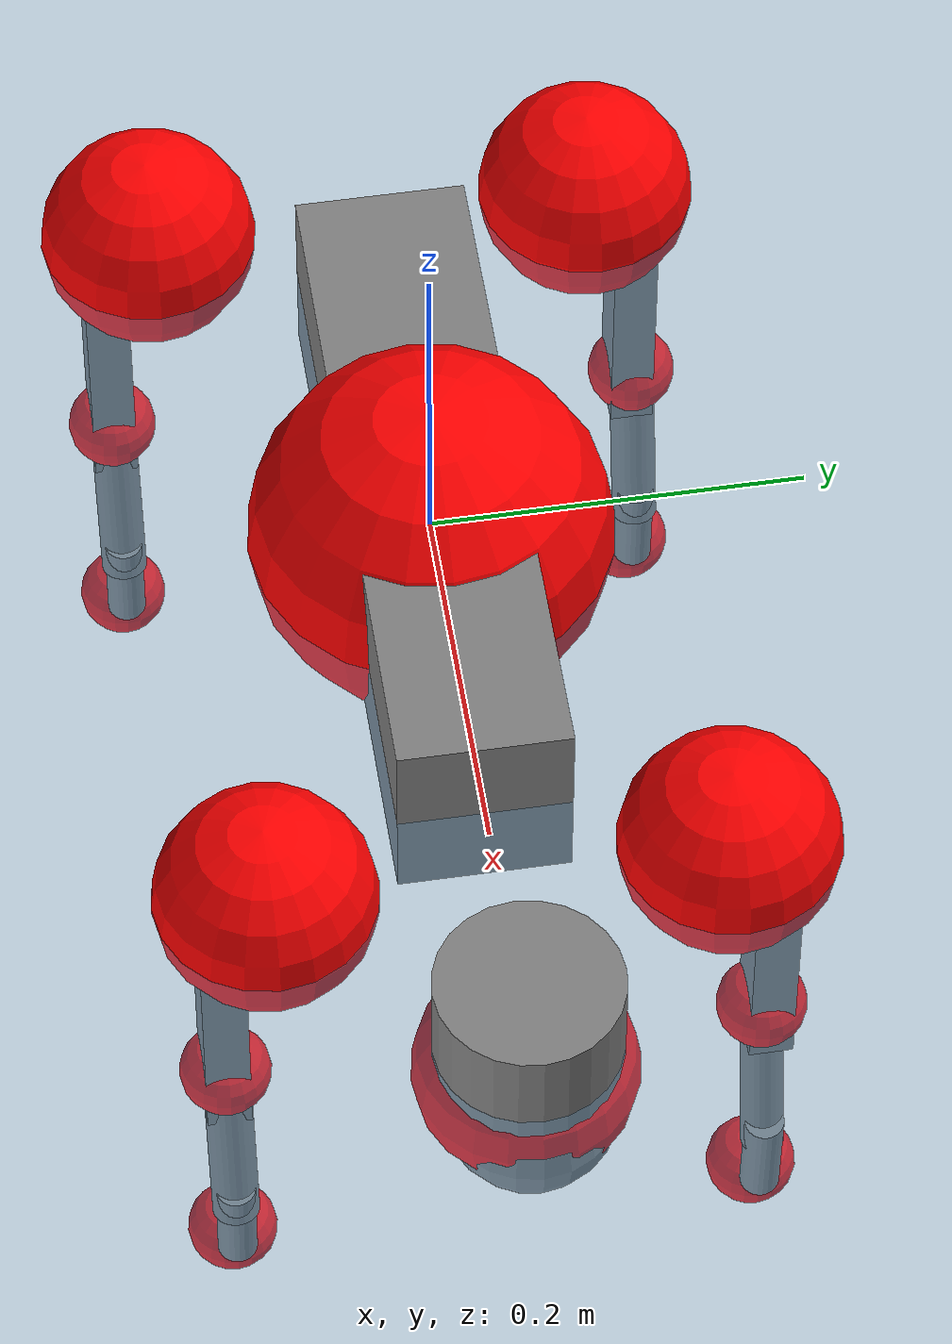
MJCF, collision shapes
<mujoco model="go2">
  <compiler angle="radian" assetdir="assets" balanceinertia="true" inertiafromgeom="false"/>

  <option timestep="0.005" density="1.2" viscosity="2e-05"/>

  <size nkey="1"/>

  <visual>
    <quality shadowsize="8192"/>
    <map shadowclip="0.5"/>
  </visual>

  <default>
    <default class="/">
      <geom contype="0" conaffinity="0" group="1" solref="-1000 -80"/>
      <site size="0.01 0.005 0.005" group="5"/>
      <general forcelimited="true" biastype="affine" gainprm="20" biasprm="0 -20 -0.5"/>
      <default class="go2">
        <joint armature="0.01" damping="0.01" frictionloss="0.2"/>
        <geom condim="1" margin="0.001"/>
        <default class="visual">
          <geom type="mesh" group="2"/>
        </default>
        <default class="collision">
          <geom group="3"/>
          <default class="foot">
            <geom size="0.022 0 0" condim="6" priority="1" friction="0.8 0.02 0.01" solimp="0.015 1 0.022"/>
          </default>
        </default>
        <default class="reward_collision_sphere">
          <geom group="5" rgba="1 0 0 1"/>
        </default>
      </default>
    </default>
  </default>

  <asset>
    <texture type="skybox" colorspace="auto" name="//unnamed_texture_0" builtin="gradient" rgb1="0.95 0.95 0.95" rgb2="0.95 0.95 0.95" width="100" height="600"/>
    <texture type="2d" colorspace="auto" name="texplane" builtin="checker" rgb1="0.345 0.575 0.748" rgb2="0.345 0.575 0.748" markrgb="1 1 1" width="512" height="512"/>
    <material name="MatPlane" class="/" texture="texplane" texuniform="true" texrepeat="2 2" specular="0.9"/>
    <material name="metal" class="/" rgba="0.9 0.95 0.95 1"/>
    <material name="black" class="/" rgba="0 0 0 1"/>
    <material name="white" class="/"/>
    <material name="gray" class="/" rgba="0.671705 0.692426 0.77427 1"/>
    <mesh name="base_0" class="/" file="base_0.obj"/>
    <mesh name="base_1" class="/" file="base_1.obj"/>
    <mesh name="base_2" class="/" file="base_2.obj"/>
    <mesh name="base_3" class="/" file="base_3.obj"/>
    <mesh name="base_4" class="/" file="base_4.obj"/>
    <mesh name="hip_0" class="/" file="hip_0.obj"/>
    <mesh name="hip_1" class="/" file="hip_1.obj"/>
    <mesh name="thigh_0" class="/" file="thigh_0.obj"/>
    <mesh name="thigh_1" class="/" file="thigh_1.obj"/>
    <mesh name="thigh_mirror_0" class="/" file="thigh_mirror_0.obj"/>
    <mesh name="thigh_mirror_1" class="/" file="thigh_mirror_1.obj"/>
    <mesh name="calf_0" class="/" file="calf_0.obj"/>
    <mesh name="calf_1" class="/" file="calf_1.obj"/>
    <mesh name="calf_mirror_0" class="/" file="calf_mirror_0.obj"/>
    <mesh name="calf_mirror_1" class="/" file="calf_mirror_1.obj"/>
    <mesh name="foot" class="/" file="foot.obj"/>
  </asset>

  <worldbody>
    <geom name="floor" class="/" size="100 100 0.125" type="plane" group="0" material="MatPlane"/>
    <light name="toplight_shadow" class="/" pos="0 0 5" dir="0.0990148 0.0990148 -0.990148" type="directional" ambient="0.04 0.04 0.04" diffuse="0.55 0.55 0.55" specular="0.12 0.12 0.12"/>
    <light name="toplight_fill" class="/" pos="0 0 5" dir="0.0990148 0.0990148 -0.990148" type="directional" castshadow="false" ambient="0.04 0.04 0.04" diffuse="0.3 0.3 0.3" specular="0.08 0.08 0.08"/>
    <body name="trunk" childclass="go2" pos="0.0027805 0.000207584 7.30814e-05" quat="1 3.61989e-05 0.0002888 -0.000370082">
      <inertial pos="0.0240463 6.38659e-06 -0.00419217" quat="-0.00145498 0.710907 0.00415577 0.703272" mass="6.42563" diaginertia="0.211339 0.122064 0.00619679"/>
      <joint name="//unnamed_joint_0" type="free" armature="0" damping="0" frictionloss="0"/>
      <geom name="//unnamed_geom_1" class="visual" material="black" mesh="base_0"/>
      <geom name="//unnamed_geom_2" class="visual" material="black" mesh="base_1"/>
      <geom name="//unnamed_geom_3" class="visual" material="black" mesh="base_2"/>
      <geom name="//unnamed_geom_4" class="visual" material="white" mesh="base_3"/>
      <geom name="//unnamed_geom_5" class="visual" material="gray" mesh="base_4"/>
      <geom name="trunk_1" class="collision" size="0.183333 0.0455653 0.0555556" type="box"/>
      <geom name="trunk_2" class="collision" size="0.048733 0.0438597" pos="0.322128 0 0.00760028" type="cylinder"/>
      <geom name="trunk_3" class="collision" size="0.045809" pos="0.331171 0 -0.0456017"/>
      <geom name="//unnamed_geom_9" class="reward_collision_sphere" size="0.0974659"/>
      <geom name="//unnamed_geom_10" class="reward_collision_sphere" size="0.0584795" pos="0.316477 0 -0.0342013"/>
      <site name="imu" pos="-0.0326815 0.00444448 0.0191379" size="0.00974659"/>
      <camera name="track" pos="0 -2.06735 0" quat="0.707107 0.707107 0 0" mode="trackcom"/>
      <camera name="ego_camera" pos="0.352646 0 0.0342013" quat="-0.5 -0.5 0.5 0.5"/>
      <body name="FL_hip" pos="0.21823 0.0483651 -0.00116062" quat="0.999999 -0.000548018 -0.000147612 0.00108562">
        <inertial pos="-0.00880295 0.00190775 -0.000719578" quat="0.496827 0.499556 0.506012 0.497552" mass="0.632066" diaginertia="0.00164237 0.000677768 0.000122129"/>
        <joint name="FL_hip_joint" pos="0 0 0" axis="0.999945 0.00854191 -0.0061536" range="-1.04772 1.04875" armature="0.00848651" damping="0.00741034" frictionloss="0.20531"/>
        <geom name="//unnamed_geom_11" class="visual" material="metal" mesh="hip_0"/>
        <geom name="//unnamed_geom_12" class="visual" material="gray" mesh="hip_1"/>
        <geom name="//unnamed_geom_13" class="collision" size="0.0448343 0.0194932" pos="0 0.0826939 0" quat="0.707107 0.707107 0 0" type="cylinder"/>
        <geom name="//unnamed_geom_14" class="reward_collision_sphere" size="0.0584795" pos="0 0.0723572 0"/>
        <body name="FL_thigh" pos="-0.00270267 0.0982093 -0.000731824" quat="1 0.00046654 -0.000235019 -0.000208214">
          <inertial pos="-0.00418937 -0.0231067 -0.0272426" quat="0.828185 0.0871077 -0.0170057 0.553382" mass="1.07366" diaginertia="0.0110813 0.00690216 0.000221935"/>
          <joint name="FL_thigh_joint" pos="0 0 0" axis="-0.000574557 0.999863 0.016541" range="-1.56142 3.49321" armature="0.0111986" damping="0" frictionloss="0.178698"/>
          <geom name="//unnamed_geom_15" class="visual" material="metal" mesh="thigh_0"/>
          <geom name="//unnamed_geom_16" class="visual" material="gray" mesh="thigh_1"/>
          <geom name="//unnamed_geom_17" class="collision" size="0.103801 0.0119396 0.0165692" pos="0 0 -0.080943" quat="0.707107 0 0.707107 0" type="box"/>
          <body name="FL_calf" pos="-0.000573421 -0.00274935 -0.161225" quat="0.999999 0.000875522 0.000731588 0.000359521">
            <inertial pos="0.00831543 0.000451769 -0.107268" quat="0.710051 0.0125774 0.00330425 0.704031" mass="0.233948" diaginertia="0.00272164 0.00176205 1.33116e-05"/>
            <joint name="FL_calf_joint" pos="0 0 0" axis="-0.00556654 0.999984 0.000326248" stiffness="0.00161346" range="-2.73219 -0.819528" armature="0.00989432" damping="0" frictionloss="0.190696"/>
            <geom name="//unnamed_geom_18" class="visual" material="gray" mesh="calf_0"/>
            <geom name="//unnamed_geom_19" class="visual" material="black" mesh="calf_1"/>
            <geom name="FL_calf0" class="collision" size="0.0116959 0.0584795" pos="0.0090422 0 -0.0456017" quat="0.994493 0 -0.104807 0" type="cylinder"/>
            <geom name="//unnamed_geom_21" class="collision" size="0.0107212 0.0316764" pos="0.0226055 0 -0.112484" quat="0.999688 0 0.0249974 0" type="cylinder"/>
            <geom name="//unnamed_geom_22" class="visual" pos="0 0 -0.161886" quat="1 0 0 0" material="black" mesh="foot"/>
            <geom name="FL_foot" class="foot" size="0.0205178" pos="-0.00226055 0 -0.161886"/>
            <geom name="//unnamed_geom_24" class="reward_collision_sphere" size="0.0243665"/>
            <geom name="//unnamed_geom_25" class="reward_collision_sphere" size="0.0243665" pos="-0.00226055 0 -0.161886"/>
            <site name="FL_foot" class="foot" pos="-0.00226055 0 -0.161886" size="0.00974659"/>
          </body>
        </body>
      </body>
      <body name="FR_hip" pos="0.216475 -0.0454619 -0.00201893" quat="1 0.000192066 -5.97637e-05 0.000199919">
        <inertial pos="-0.00350791 -0.00253637 -0.00242157" quat="0.495431 0.499208 0.50255 0.502776" mass="0.640992" diaginertia="0.00168174 0.000707072 0.000125929"/>
        <joint name="FR_hip_joint" pos="0 0 0" axis="0.999917 0.0106674 -0.00724634" range="-1.10406 1.03767" armature="0.00950266" damping="0.0191958" frictionloss="0.168111"/>
        <geom name="//unnamed_geom_26" class="visual" pos="0 2.38389e-09 1.0225e-07" quat="4.63268e-05 1 0 0" material="metal" mesh="hip_0"/>
        <geom name="//unnamed_geom_27" class="visual" pos="0 3.86457e-09 -2.52903e-07" quat="4.63268e-05 1 0 0" material="gray" mesh="hip_1"/>
        <geom name="//unnamed_geom_28" class="collision" size="0.0448343 0.0194932" pos="0 -0.0826939 0" quat="0.707107 0.707107 0 0" type="cylinder"/>
        <geom name="//unnamed_geom_29" class="reward_collision_sphere" size="0.0584795" pos="0 -0.0723572 0"/>
        <body name="FR_thigh" pos="0.000423462 -0.0974355 0.00244433" quat="1 1.08041e-05 -1.65689e-05 -4.6882e-06">
          <inertial pos="-0.00499999 0.0254007 -0.0253976" quat="0.551651 -0.0200208 0.0847153 0.82952" mass="1.06336" diaginertia="0.0110623 0.00677941 0.000222431"/>
          <joint name="FR_thigh_joint" pos="0 0 0" axis="-0.00820332 -0.999947 -0.00624586" range="-3.47661 1.59124" armature="0.0101282" damping="0.00565202" frictionloss="0.184613"/>
          <geom name="//unnamed_geom_30" class="visual" material="metal" mesh="thigh_mirror_0"/>
          <geom name="//unnamed_geom_31" class="visual" material="gray" mesh="thigh_mirror_1"/>
          <geom name="//unnamed_geom_32" class="collision" size="0.103801 0.0119396 0.0165692" pos="0 0 -0.080943" quat="0.707107 0 0.707107 0" type="box"/>
          <body name="FR_calf" pos="-0.000318544 0.000473484 -0.158796" quat="0.999999 -2.36217e-05 0.00122457 -0.000174768">
            <inertial pos="0.00926005 -0.00129104 -0.104972" quat="0.703169 -0.00343341 -0.00367456 0.711005" mass="0.218412" diaginertia="0.00282498 0.00180909 1.40719e-05"/>
            <joint name="FR_calf_joint" pos="0 0 0" axis="0.00981797 -0.99994 0.0048268" stiffness="0.0101273" range="0.783067 2.71978" armature="0.00929925" damping="0.0220993" frictionloss="0.222232"/>
            <geom name="//unnamed_geom_33" class="visual" material="gray" mesh="calf_mirror_0"/>
            <geom name="//unnamed_geom_34" class="visual" material="black" mesh="calf_mirror_1"/>
            <geom name="FR_calf0" class="collision" size="0.0126706 0.0584795" pos="0.0113028 0 -0.0456017" quat="0.995004 0 -0.0998334 0" type="cylinder"/>
            <geom name="//unnamed_geom_36" class="collision" size="0.0107212 0.0316764" pos="0.0226055 0 -0.112484" quat="0.999688 0 0.0249974 0" type="cylinder"/>
            <geom name="//unnamed_geom_37" class="visual" pos="0 0 -0.161886" quat="1 0 0 0" material="black" mesh="foot"/>
            <geom name="FR_foot" class="foot" size="0.0215089" pos="-0.00226055 0 -0.161886"/>
            <geom name="//unnamed_geom_39" class="reward_collision_sphere" size="0.0243665"/>
            <geom name="//unnamed_geom_40" class="reward_collision_sphere" size="0.0243665" pos="-0.00226055 0 -0.161886"/>
            <site name="FR_foot" class="foot" pos="-0.00226055 0 -0.161886" size="0.00974659"/>
          </body>
        </body>
      </body>
      <body name="RL_hip" pos="-0.216799 0.045394 0.000669586" quat="1 -0.00020707 -8.36134e-05 -0.000302474">
        <inertial pos="0.00877905 -0.000198091 3.24894e-05" quat="0.50012 0.496049 0.50888 0.49483" mass="0.621387" diaginertia="0.0016514 0.000704922 0.000117801"/>
        <joint name="RL_hip_joint" pos="0 0 0" axis="-0.999989 -0.0039755 -0.00260775" range="-1.00174 1.04496" armature="0.00980737" damping="0.0154773" frictionloss="0.196843"/>
        <geom name="//unnamed_geom_41" class="visual" pos="-3.22544e-09 0 -6.32261e-07" quat="4.63268e-05 0 1 0" material="metal" mesh="hip_0"/>
        <geom name="//unnamed_geom_42" class="visual" pos="-5.22883e-09 0 -5.60726e-07" quat="4.63268e-05 0 1 0" material="gray" mesh="hip_1"/>
        <geom name="//unnamed_geom_43" class="collision" size="0.0448343 0.0194932" pos="0 0.0826939 0" quat="0.707107 0.707107 0 0" type="cylinder"/>
        <geom name="//unnamed_geom_44" class="reward_collision_sphere" size="0.0584795" pos="0 0.0723572 0"/>
        <body name="RL_thigh" pos="0.00177489 0.0991986 -0.000486848" quat="1 1.58711e-05 6.76112e-05 -2.43233e-05">
          <inertial pos="-0.00513299 -0.0203606 -0.0246047" quat="0.834769 0.0794314 -0.0277927 0.544131" mass="1.08483" diaginertia="0.0109929 0.00711439 0.000222799"/>
          <joint name="RL_thigh_joint" pos="0 0 0" axis="0.0100413 0.999946 0.00267965" range="-0.478102 4.57553" armature="0.0110931" damping="0.002504" frictionloss="0.221902"/>
          <geom name="//unnamed_geom_45" class="visual" material="metal" mesh="thigh_0"/>
          <geom name="//unnamed_geom_46" class="visual" material="gray" mesh="thigh_1"/>
          <geom name="//unnamed_geom_47" class="collision" size="0.103801 0.0119396 0.0165692" pos="0 0 -0.080943" quat="0.707107 0 0.707107 0" type="box"/>
          <body name="RL_calf" pos="-0.00229406 0.00241936 -0.164598" quat="0.999999 0.000996554 1.59683e-05 0.000532894">
            <inertial pos="0.00681145 -0.000586091 -0.105301" quat="0.715154 0.000234903 -0.00124283 0.698966" mass="0.215642" diaginertia="0.00272822 0.0017097 1.35617e-05"/>
            <joint name="RL_calf_joint" pos="0 0 0" axis="0.00508435 0.999887 -0.014137" range="-2.74211 -0.878068" armature="0.00924237" damping="0.00887106" frictionloss="0.169269"/>
            <geom name="//unnamed_geom_48" class="visual" material="gray" mesh="calf_0"/>
            <geom name="//unnamed_geom_49" class="visual" material="black" mesh="calf_1"/>
            <geom name="RL_calf0" class="collision" size="0.0126706 0.0584795" pos="0.0113028 0 -0.0456017" quat="0.995004 0 -0.0998334 0" type="cylinder"/>
            <geom name="//unnamed_geom_51" class="collision" size="0.0107212 0.0316764" pos="0.0226055 0 -0.112484" quat="0.999688 0 0.0249974 0" type="cylinder"/>
            <geom name="//unnamed_geom_52" class="visual" pos="0 0 -0.161886" quat="1 0 0 0" material="black" mesh="foot"/>
            <geom name="RL_foot" class="foot" size="0.0170292" pos="-0.00226055 0 -0.161886"/>
            <geom name="//unnamed_geom_54" class="reward_collision_sphere" size="0.0243665"/>
            <geom name="//unnamed_geom_55" class="reward_collision_sphere" size="0.0243665" pos="-0.00226055 0 -0.161886"/>
            <site name="RL_foot" class="foot" pos="-0.00226055 0 -0.161886" size="0.00974659"/>
          </body>
        </body>
      </body>
      <body name="RR_hip" pos="-0.220717 -0.0495111 -0.000467183" quat="1 -8.30018e-06 1.32048e-05 -4.43265e-05">
        <inertial pos="0.00844459 -0.000686092 0.00041183" quat="0.488377 0.497782 0.501312 0.512237" mass="0.63642" diaginertia="0.00168728 0.000731836 0.000126397"/>
        <joint name="RR_hip_joint" pos="0 0 0" axis="-0.999918 -0.0107634 -0.00694341" range="-1.0452 1.03851" armature="0.00975616" damping="0.00919229" frictionloss="0.199672"/>
        <geom name="//unnamed_geom_56" class="visual" pos="3.2221e-09 2.38389e-09 -7.34511e-07" quat="2.14617e-09 4.63268e-05 4.63268e-05 -1" material="metal" mesh="hip_0"/>
        <geom name="//unnamed_geom_57" class="visual" pos="5.2371e-09 3.86457e-09 -3.07822e-07" quat="2.14617e-09 4.63268e-05 4.63268e-05 -1" material="gray" mesh="hip_1"/>
        <geom name="//unnamed_geom_58" class="collision" size="0.0448343 0.0194932" pos="0 -0.0826939 0" quat="0.707107 0.707107 0 0" type="cylinder"/>
        <geom name="//unnamed_geom_59" class="reward_collision_sphere" size="0.0584795" pos="0 -0.0723572 0"/>
        <body name="RR_thigh" pos="0.000152266 -0.0987914 0.00142528" quat="1 0.00027166 1.51458e-05 -0.000187506">
          <inertial pos="-0.00505873 0.0231815 -0.0254478" quat="0.543903 -0.017141 0.0919844 0.833915" mass="1.08336" diaginertia="0.0109629 0.00715887 0.000230252"/>
          <joint name="RR_thigh_joint" pos="0 0 0" axis="-0.00243255 -0.999966 -0.00786478" range="-4.54062 0.52287" armature="0.0109555" damping="0.00209802" frictionloss="0.183849"/>
          <geom name="//unnamed_geom_60" class="visual" material="metal" mesh="thigh_mirror_0"/>
          <geom name="//unnamed_geom_61" class="visual" material="gray" mesh="thigh_mirror_1"/>
          <geom name="//unnamed_geom_62" class="collision" size="0.103801 0.0119396 0.0165692" pos="0 0 -0.080943" quat="0.707107 0 0.707107 0" type="box"/>
          <body name="RR_calf" pos="0.000550072 0.000196401 -0.161724" quat="1 0.000220241 -0.000271077 -0.000166054">
            <inertial pos="0.00422031 -0.00183168 -0.104982" quat="0.703774 -0.00453321 0.00201601 0.710407" mass="0.232528" diaginertia="0.00268809 0.00179754 1.3511e-05"/>
            <joint name="RR_calf_joint" pos="0 0 0" axis="0.00202226 -0.999997 -0.0014932" stiffness="0.00154761" range="0.839013 2.77823" armature="0.00985101" damping="0.00949473" frictionloss="0.22069"/>
            <geom name="//unnamed_geom_63" class="visual" material="gray" mesh="calf_mirror_0"/>
            <geom name="//unnamed_geom_64" class="visual" material="black" mesh="calf_mirror_1"/>
            <geom name="RR_calf0" class="collision" size="0.0126706 0.0584795" pos="0.0113028 0 -0.0456017" quat="0.995004 0 -0.0998334 0" type="cylinder"/>
            <geom name="//unnamed_geom_66" class="collision" size="0.0107212 0.0316764" pos="0.0226055 0 -0.112484" quat="0.999688 0 0.0249974 0" type="cylinder"/>
            <geom name="//unnamed_geom_67" class="visual" pos="0 0 -0.161886" quat="1 0 0 0" material="black" mesh="foot"/>
            <geom name="RR_foot" class="foot" size="0.0230995" pos="-0.00226055 0 -0.161886"/>
            <geom name="//unnamed_geom_69" class="reward_collision_sphere" size="0.0243665"/>
            <geom name="//unnamed_geom_70" class="reward_collision_sphere" size="0.0243665" pos="-0.00226055 0 -0.161886"/>
            <site name="RR_foot" class="foot" pos="-0.00226055 0 -0.161886" size="0.00974659"/>
          </body>
        </body>
      </body>
    </body>
  </worldbody>

  <contact>
    <pair class="/" geom1="floor" geom2="FL_foot" name="//unnamed_contact_0"/>
    <pair class="/" geom1="floor" geom2="FR_foot" name="//unnamed_contact_1"/>
    <pair class="/" geom1="floor" geom2="RL_foot" name="//unnamed_contact_2"/>
    <pair class="/" geom1="floor" geom2="RR_foot" name="//unnamed_contact_3"/>
  </contact>

  <actuator>
    <general name="FL_hip" class="/" joint="FL_hip_joint" forcerange="-23.1897 23.1897" gainprm="19.4399" biasprm="0 -19.4399 -0.479369"/>
    <general name="FL_thigh" class="/" joint="FL_thigh_joint" forcerange="-20.7438 20.7438" gainprm="19.4399" biasprm="0 -19.4399 -0.479369"/>
    <general name="FL_calf" class="/" joint="FL_calf_joint" forcerange="-45.9288 45.9288" gainprm="19.4399" biasprm="0 -19.4399 -0.479369"/>
    <general name="FR_hip" class="/" joint="FR_hip_joint" forcerange="-23.0761 23.0761" gainprm="19.4399" biasprm="0 -19.4399 -0.479369"/>
    <general name="FR_thigh" class="/" joint="FR_thigh_joint" forcerange="-22.5306 22.5306" gainprm="19.4399" biasprm="0 -19.4399 -0.479369"/>
    <general name="FR_calf" class="/" joint="FR_calf_joint" forcerange="-47.599 47.599" gainprm="19.4399" biasprm="0 -19.4399 -0.479369"/>
    <general name="RL_hip" class="/" joint="RL_hip_joint" forcerange="-22.982 22.982" gainprm="19.4399" biasprm="0 -19.4399 -0.479369"/>
    <general name="RL_thigh" class="/" joint="RL_thigh_joint" forcerange="-24.9074 24.9074" gainprm="19.4399" biasprm="0 -19.4399 -0.479369"/>
    <general name="RL_calf" class="/" joint="RL_calf_joint" forcerange="-42.3965 42.3965" gainprm="19.4399" biasprm="0 -19.4399 -0.479369"/>
    <general name="RR_hip" class="/" joint="RR_hip_joint" forcerange="-22.9725 22.9725" gainprm="19.4399" biasprm="0 -19.4399 -0.479369"/>
    <general name="RR_thigh" class="/" joint="RR_thigh_joint" forcerange="-22.5834 22.5834" gainprm="19.4399" biasprm="0 -19.4399 -0.479369"/>
    <general name="RR_calf" class="/" joint="RR_calf_joint" forcerange="-40.4879 40.4879" gainprm="19.4399" biasprm="0 -19.4399 -0.479369"/>
  </actuator>

  <sensor>
    <gyro site="imu" name="imu_angular_velocity"/>
    <velocimeter site="imu" name="imu_linear_velocity"/>
    <framelinvel objtype="site" objname="FL_foot" name="FL_foot_global_linear_velocity"/>
    <framelinvel objtype="site" objname="FR_foot" name="FR_foot_global_linear_velocity"/>
    <framelinvel objtype="site" objname="RL_foot" name="RL_foot_global_linear_velocity"/>
    <framelinvel objtype="site" objname="RR_foot" name="RR_foot_global_linear_velocity"/>
  </sensor>

  <keyframe>
    <key name="home" qpos="0 0 0.325 1 0 0 0 0.1 0.8 -1.5 -0.1 -0.8 1.5 -0.1 0.8 -1.5 0.1 -0.8 1.5"/>
  </keyframe>
</mujoco>
